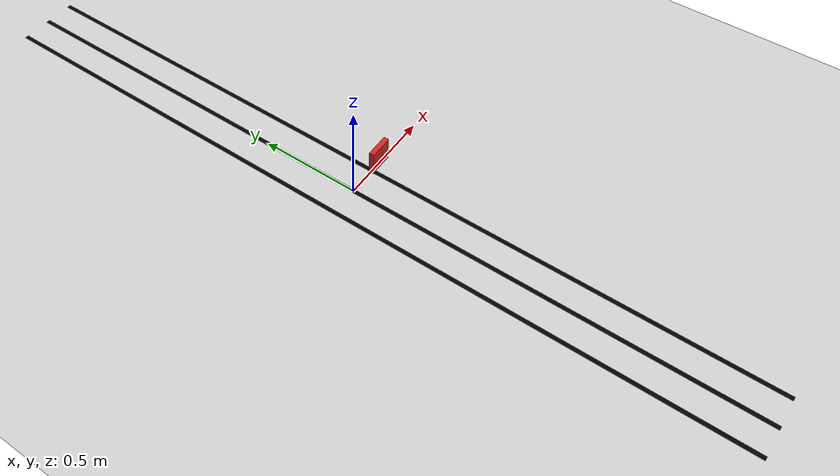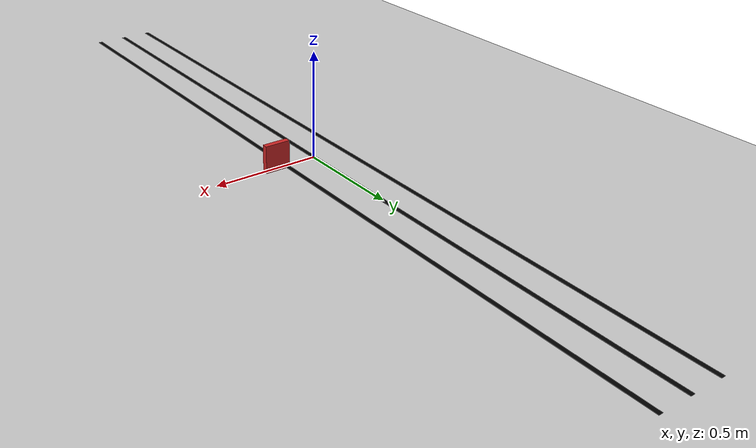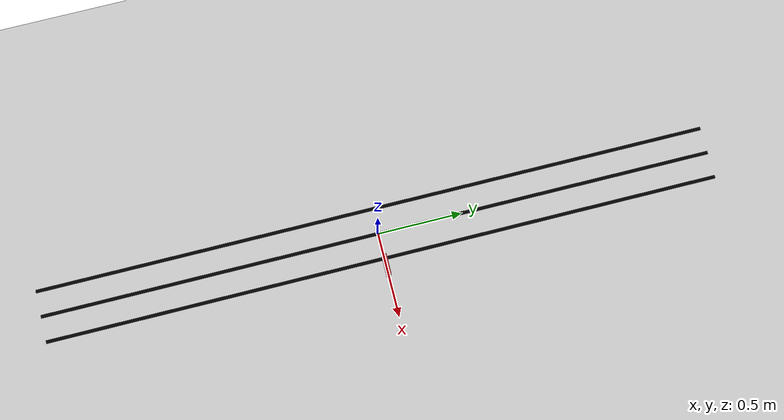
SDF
<?xml version="1.0"?>
<sdf version="1.6">
  <world name="track_world">
    <!-- 1) Piso y sol -->
    <include><uri>model://ground_plane</uri></include>
    <include><uri>model://sun</uri></include>

    <!-- 2) Franjas negras: colocadas a ±stripe_spacing/2 -->
    <!-- Left stripe -->
    <model name="line_left">
      <static>true</static>
      <link name="L">
        <!-- Desplazamiento X = –0.30 m/2 = –0.15 m -->
        <pose>-0.15 0 0.001 0 0 0</pose>
        <visual name="vis">
          <geometry>
            <box>
              <size>0.02 4.0 0.001</size>  <!-- stripe_width × tile_size -->
            </box>
          </geometry>
          <material>
            <ambient>0 0 0 1</ambient>
          </material>
        </visual>
      </link>
    </model>

    <!-- Center stripe (opcional: si tu pista tiene 3 franjas) -->
    <model name="line_center">
      <static>true</static>
      <link name="C">
        <pose>0.0 0 0.001 0 0 0</pose>
        <visual name="vis">
          <geometry>
            <box><size>0.02 4.0 0.001</size></box>
          </geometry>
          <material><ambient>0 0 0 1</ambient></material>
        </visual>
      </link>
    </model>

    <!-- Right stripe -->
    <model name="line_right">
      <static>true</static>
      <link name="R">
        <pose>0.15 0 0.001 0 0 0</pose>
        <visual name="vis">
          <geometry>
            <box><size>0.02 4.0 0.001</size></box>
          </geometry>
          <material><ambient>0 0 0 1</ambient></material>
        </visual>
      </link>
    </model>

    <!-- 3) Semáforo (modelo estándar) -->
    <!-- Lo colocamos a 0.20 m delante del origen, ajusta si quieres otra posición -->
    <include>
      <uri>model://traffic_light</uri>
      <pose>0.20 0 0 0 0 0</pose>
    </include>
  </world>
</sdf>

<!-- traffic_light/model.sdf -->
<sdf version='1.6'>
  <model name='traffic_light'>
    <link name='traffic_light'>
      <pose>0 0 0 0 0 0</pose>
      <collision name='collision'>
        <geometry>
          <box>
            <size>0.12 0.025 0.25</size>
          </box>
        </geometry>
      </collision>
      <visual name='visual'>
        <geometry>
          <box>
            <size>0.12 0.025 0.25</size>
          </box>
        </geometry>
        <material>
          <script>
            <uri>model://turtlebot3_autorace_2020/traffic_light/materials/scripts</uri>
            <uri>model://turtlebot3_autorace_2020/traffic_light/materials/textures</uri>
            <name>traffic_light_red</name>
          </script>
        </material>
      </visual>
    </link>
    <plugin name="traffic_light_plugin" filename="libtraffic_light_plugin.so">
    </plugin>
    <static>1</static>
  </model>
</sdf>
